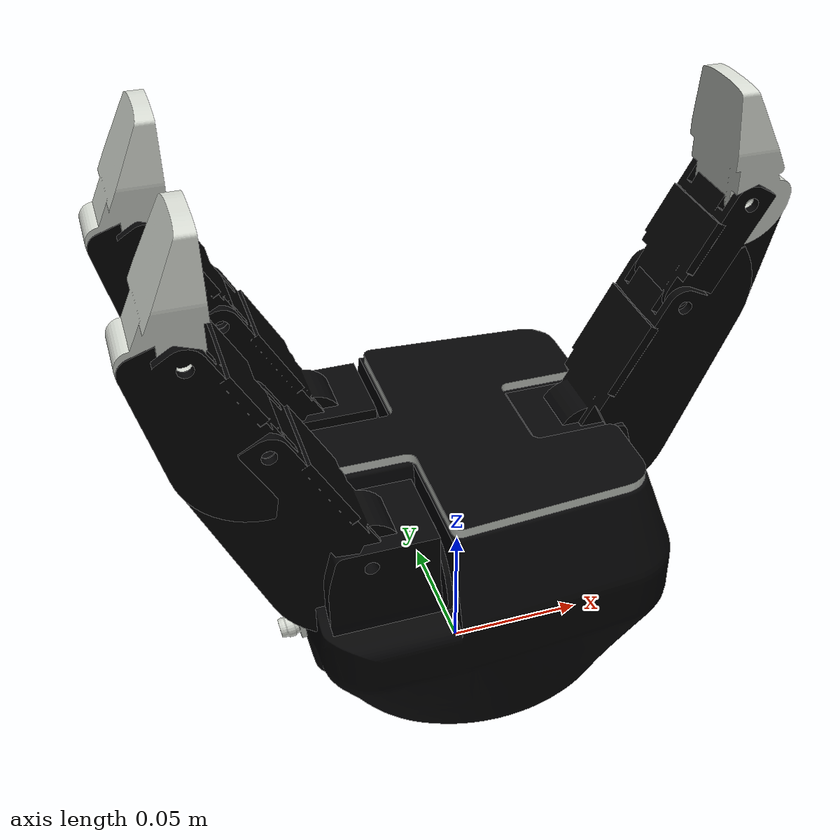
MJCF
<mujoco model="robotiq_3f_gripper">
  <custom>
    <!-- Controller gripper defaults: open and closed actuator control values. -->
    <numeric name="critter_gripper:palm_finger_1" data="0 0"/>
    <numeric name="critter_gripper:palm_finger_2" data="0 0"/>
    <numeric name="critter_gripper:finger_1_proximal" data="0.0495 1.15"/>
    <numeric name="critter_gripper:finger_1_middle" data="0 1.45"/>
    <numeric name="critter_gripper:finger_1_distal" data="-0.0523 -1.15"/>
    <numeric name="critter_gripper:finger_2_proximal" data="0.0495 1.15"/>
    <numeric name="critter_gripper:finger_2_middle" data="0 1.45"/>
    <numeric name="critter_gripper:finger_2_distal" data="-0.0523 -1.15"/>
    <numeric name="critter_gripper:finger_middle_proximal" data="0.0495 1.15"/>
    <numeric name="critter_gripper:finger_middle_middle" data="0 1.45"/>
    <numeric name="critter_gripper:finger_middle_distal" data="-0.0523 -1.15"/>
  </custom>
  <compiler angle="radian" meshdir="assets" autolimits="true"/>

  <option integrator="implicitfast" cone="elliptic" impratio="10"/>

  <default>
    <default class="robotiq_3f">
      <joint type="hinge" damping="0.15" armature="0.002" frictionloss="0.02"/>
      <position kp="30" kv="2" forcerange="-5 5"/>
      <default class="visual">
        <geom type="mesh" contype="0" conaffinity="0" group="2" density="0"/>
      </default>
      <default class="collision">
        <!-- contype=0 prevents gripper self-collision while retaining contact with ordinary objects. -->
        <geom type="box" contype="0" conaffinity="1" group="3" friction="1.2 0.08 0.01" condim="4"/>
      </default>
      <default class="finger_tip_collision">
        <geom type="box" contype="0" conaffinity="1" group="3" condim="4"
          friction="2 0.1 0.01" solimp="0.9 0.98 0.001" solref="0.004 1" priority="1"/>
      </default>
    </default>
  </default>

  <asset>
    <material name="black_metal" rgba="0.015 0.015 0.018 1" metallic="0" roughness="0.4"/>
    <material name="metal" rgba="0.82745 0.84314 0.81176 1" metallic="0.25" roughness="0.4"/>
    <mesh name="base_black" file="base_black.obj"/>
    <mesh name="base_metal" file="base_metal.obj"/>
    <mesh name="finger_palm" file="finger_palm.obj"/>
    <mesh name="finger_proximal" file="finger_proximal.obj"/>
    <mesh name="finger_middle" file="finger_middle.obj"/>
    <mesh name="finger_distal" file="finger_distal.obj"/>
  </asset>

  <worldbody>
    <body name="robotiq_3f_gripper" childclass="robotiq_3f">
      <site name="attachment_site" pos="0 0 0" quat="1 0 0 0" size="0.004" group="4"/>
      <site name="gripper_target" pos="0 0 0.18" quat="1 0 0 0" size="0.006" group="4"/>

      <!-- Webots models the gripper along +Y. This fixed frame points it along Critter's +Z tool axis
           and places the rear face of the housing at the attachment site. -->
      <body name="base" pos="0 0 0.052" quat="0.7071067812 0.7071067812 0 0">
        <geom class="visual" mesh="base_black" material="black_metal"/>
        <geom class="visual" mesh="base_metal" material="metal"/>
        <geom class="collision" type="cylinder" pos="0 -0.029 0" size="0.023 0.025" mass="0.2"/>
        <geom class="collision" pos="0 0.005 0" size="0.063 0.0465 0.065" mass="0.8"/>

        <body name="finger_1_link_0" pos="-0.0455 0.0214 0.036"
          quat="-0.0000026732 0.7068252251 0.7073882252 0.000003">
          <joint name="palm_finger_1_joint" axis="0 1 0" range="-0.192 0.1784"/>
          <geom class="visual" mesh="finger_palm" pos="0.02 0 0" material="black_metal"/>
          <geom class="collision" pos="0.007 0.006 0" size="0.02 0.02 0.016" mass="0.05"/>
          <body name="finger_1_link_1" pos="0.02 0 0">
            <joint name="finger_1_joint_1" axis="0 0 1" ref="0.0495" range="0.0495 1.2218"/>
            <geom class="visual" mesh="finger_proximal" pos="0.05 -0.028 0"
              quat="0.9663899781 0 0 -0.2570805519" material="black_metal"/>
            <geom class="collision" pos="0.0123158 -0.02039 0" size="0.0455 0.019 0.016"
              quat="0.9728196178 0 0 -0.231564227" mass="0.15"/>
            <body name="finger_1_link_2" pos="0.05 -0.028 0"
              quat="0.9663899781 0 0 -0.2570805519">
              <joint name="finger_1_joint_2" axis="0 0 1" range="0 1.5708"/>
              <geom class="visual" mesh="finger_middle" pos="0.039 0 0.0075" material="black_metal"/>
              <geom class="collision" pos="0.02694 -0.00895 0" size="0.02 0.016 0.016"
                quat="0.9999211755 0 0 -0.0125555916" mass="0.15"/>
              <body name="finger_1_link_3" pos="0.039 0 0">
                <joint name="finger_1_joint_3" axis="0 0 1" ref="-0.0523" range="-1.2217 -0.0523"/>
                <geom class="visual" mesh="finger_distal" quat="0.9663899781 0 0 0.2570805519"
                  material="metal"/>
                <geom name="finger_1_pad" class="finger_tip_collision" pos="0.0180036 0.00913251 0"
                  size="0.0175 0.009 0.016" quat="0.9663567075 0 0 0.2572055867" mass="0.05"/>
              </body>
            </body>
          </body>
        </body>

        <body name="finger_2_link_0" pos="-0.0455 0.0214 -0.036"
          quat="-0.0000026732 0.7068252251 0.7073882252 0.000003">
          <joint name="palm_finger_2_joint" axis="0 1 0" range="-0.192 0.1784"/>
          <geom class="visual" mesh="finger_palm" pos="0.02 0 0" material="black_metal"/>
          <geom class="collision" pos="0.007 0.006 0" size="0.02 0.02 0.016" mass="0.05"/>
          <body name="finger_2_link_1" pos="0.02 0 0">
            <joint name="finger_2_joint_1" axis="0 0 1" ref="0.0495" range="0.0495 1.2218"/>
            <geom class="visual" mesh="finger_proximal" pos="0.05 -0.028 0"
              quat="0.9663899781 0 0 -0.2570805519" material="black_metal"/>
            <geom class="collision" pos="0.012315 -0.02039 0" size="0.0455 0.019 0.016"
              quat="0.9728196178 0 0 -0.231564227" mass="0.15"/>
            <body name="finger_2_link_2" pos="0.05 -0.028 0"
              quat="0.9663899781 0 0 -0.2570805519">
              <joint name="finger_2_joint_2" axis="0 0 1" range="0 1.5708"/>
              <geom class="visual" mesh="finger_middle" pos="0.039 0 0.0075" material="black_metal"/>
              <geom class="collision" pos="0.02694 -0.00895 0" size="0.02 0.016 0.016"
                quat="0.9999211755 0 0 -0.0125555916" mass="0.15"/>
              <body name="finger_2_link_3" pos="0.039 0 0">
                <joint name="finger_2_joint_3" axis="0 0 1" ref="-0.0523" range="-1.2217 -0.0523"/>
                <geom class="visual" mesh="finger_distal" quat="0.9663899781 0 0 0.2570805519"
                  material="metal"/>
                <geom name="finger_2_pad" class="finger_tip_collision" pos="0.018 0.00913 0"
                  size="0.0175 0.009 0.016" quat="0.9663567075 0 0 0.2572055867" mass="0.05"/>
              </body>
            </body>
          </body>
        </body>

        <body name="finger_middle_mount" pos="0.0455 0.0214 0"
          quat="0.7073882692 0 0 0.7068251811">
          <geom class="visual" mesh="finger_palm" pos="0.02 0 0" material="black_metal"/>
          <body name="finger_middle_link_1" pos="0.02 0 0">
            <joint name="finger_middle_joint_1" axis="0 0 1" ref="0.0495" range="0.0495 1.2218"/>
            <geom class="visual" mesh="finger_proximal" pos="0.05 -0.028 0"
              quat="0.9663899781 0 0 -0.2570805519" material="black_metal"/>
            <geom class="collision" pos="0.01231 -0.02039 0" size="0.0455 0.019 0.016"
              quat="0.9728196178 0 0 -0.231564227" mass="0.15"/>
            <body name="finger_middle_link_2" pos="0.05 -0.028 0"
              quat="0.9663899781 0 0 -0.2570805519">
              <joint name="finger_middle_joint_2" axis="0 0 1" range="0 1.5708"/>
              <geom class="visual" mesh="finger_middle" pos="0.039 0 0.0075" material="black_metal"/>
              <geom class="collision" pos="0.02694 -0.008952 0" size="0.02 0.016 0.016"
                quat="0.9999211755 0 0 -0.0125555916" mass="0.15"/>
              <body name="finger_middle_link_3" pos="0.039 0 0">
                <joint name="finger_middle_joint_3" axis="0 0 1" ref="-0.0523" range="-1.2217 -0.0523"/>
                <geom class="visual" mesh="finger_distal" quat="0.9663899781 0 0 0.2570805519"
                  material="metal"/>
                <geom name="finger_middle_pad" class="finger_tip_collision" pos="0.018 0.00913 0"
                  size="0.0175 0.009 0.016" quat="0.9663567075 0 0 0.2572055867" mass="0.05"/>
              </body>
            </body>
          </body>
        </body>
      </body>
    </body>
  </worldbody>

  <actuator>
    <position class="robotiq_3f" name="palm_finger_1" joint="palm_finger_1_joint" ctrlrange="-0.192 0.1784"/>
    <position class="robotiq_3f" name="finger_1_proximal" joint="finger_1_joint_1" ctrlrange="0.0495 1.2218"/>
    <position class="robotiq_3f" name="finger_1_middle" joint="finger_1_joint_2" ctrlrange="0 1.5708"/>
    <position class="robotiq_3f" name="finger_1_distal" joint="finger_1_joint_3" ctrlrange="-1.2217 -0.0523"/>
    <position class="robotiq_3f" name="palm_finger_2" joint="palm_finger_2_joint" ctrlrange="-0.192 0.1784"/>
    <position class="robotiq_3f" name="finger_2_proximal" joint="finger_2_joint_1" ctrlrange="0.0495 1.2218"/>
    <position class="robotiq_3f" name="finger_2_middle" joint="finger_2_joint_2" ctrlrange="0 1.5708"/>
    <position class="robotiq_3f" name="finger_2_distal" joint="finger_2_joint_3" ctrlrange="-1.2217 -0.0523"/>
    <position class="robotiq_3f" name="finger_middle_proximal" joint="finger_middle_joint_1" ctrlrange="0.0495 1.2218"/>
    <position class="robotiq_3f" name="finger_middle_middle" joint="finger_middle_joint_2" ctrlrange="0 1.5708"/>
    <position class="robotiq_3f" name="finger_middle_distal" joint="finger_middle_joint_3" ctrlrange="-1.2217 -0.0523"/>
  </actuator>

  <keyframe>
    <key name="open" qpos="0 0.0495 0 -0.0523 0 0.0495 0 -0.0523 0.0495 0 -0.0523"
      ctrl="0 0.0495 0 -0.0523 0 0.0495 0 -0.0523 0.0495 0 -0.0523"/>
    <key name="closed" qpos="0 1.15 1.45 -1.15 0 1.15 1.45 -1.15 1.15 1.45 -1.15"
      ctrl="0 1.15 1.45 -1.15 0 1.15 1.45 -1.15 1.15 1.45 -1.15"/>
  </keyframe>
</mujoco>
